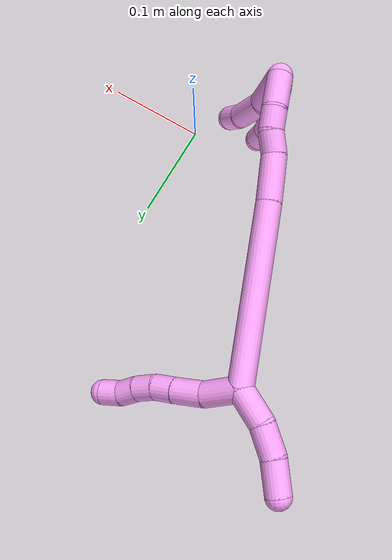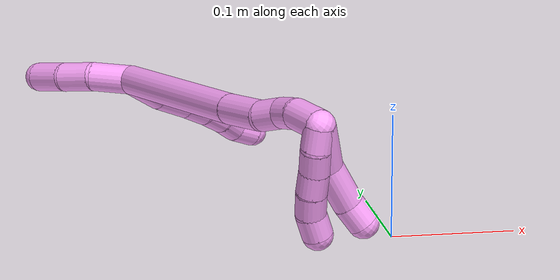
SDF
<sdf version="1.7">
 <world name="default">
  <model name="4">
   <static>0</static>
   <link name="4">
    <collision name="collision-cylinder-e_1_2_8">
     <pose>0.001529 0.003154 -0.018545 -2.97313 0.081107 -0.895965</pose>
     <geometry><cylinder><radius>0.0125</radius><length>0.037747</length></cylinder></geometry>
     <surface>
      <friction><ode><mu>1.16</mu><mu2>1.16</mu2><slip1>0</slip1><slip2>0</slip2></ode></friction>
      <contact><ode><kp>1e+06</kp><kd>1</kd><max_vel>0</max_vel><min_depth>0.001</min_depth></ode></contact>
     </surface>
    </collision>
    <visual name="visual-cylinder-e_1_2_8">
     <pose>0.001529 0.003154 -0.018545 -2.97313 0.081107 -0.895965</pose>
     <geometry><cylinder><radius>0.0125</radius><length>0.037747</length></cylinder></geometry>
     <material><ambient>1 0.65098 0.996078 1</ambient></material>
    </visual>
    <collision name="collision-cylinder-e_2_8_9">
     <pose>0.007211 0.005905 -0.051641 3.11387 0.27789 2.94399</pose>
     <geometry><cylinder><radius>0.0125</radius><length>0.030274</length></cylinder></geometry>
     <surface>
      <friction><ode><mu>1.16</mu><mu2>1.16</mu2><slip1>0</slip1><slip2>0</slip2></ode></friction>
      <contact><ode><kp>1e+06</kp><kd>1</kd><max_vel>0</max_vel><min_depth>0.001</min_depth></ode></contact>
     </surface>
    </collision>
    <visual name="visual-cylinder-e_2_8_9">
     <pose>0.007211 0.005905 -0.051641 3.11387 0.27789 2.94399</pose>
     <geometry><cylinder><radius>0.0125</radius><length>0.030274</length></cylinder></geometry>
     <material><ambient>1 0.65098 0.996078 1</ambient></material>
    </visual>
    <collision name="collision-cylinder-e_3_9_10">
     <pose>0.0138 0.004742 -0.076232 3.0661 0.23745 2.52839</pose>
     <geometry><cylinder><radius>0.0125</radius><length>0.02072</length></cylinder></geometry>
     <surface>
      <friction><ode><mu>1.16</mu><mu2>1.16</mu2><slip1>0</slip1><slip2>0</slip2></ode></friction>
      <contact><ode><kp>1e+06</kp><kd>1</kd><max_vel>0</max_vel><min_depth>0.001</min_depth></ode></contact>
     </surface>
    </collision>
    <visual name="visual-cylinder-e_3_9_10">
     <pose>0.0138 0.004742 -0.076232 3.0661 0.23745 2.52839</pose>
     <geometry><cylinder><radius>0.0125</radius><length>0.02072</length></cylinder></geometry>
     <material><ambient>1 0.65098 0.996078 1</ambient></material>
    </visual>
    <collision name="collision-cylinder-e_4_10_11">
     <pose>0.017554 0.005237 -0.096451 -3.01899 0.127755 -1.61209</pose>
     <geometry><cylinder><radius>0.0125</radius><length>0.02068</length></cylinder></geometry>
     <surface>
      <friction><ode><mu>1.16</mu><mu2>1.16</mu2><slip1>0</slip1><slip2>0</slip2></ode></friction>
      <contact><ode><kp>1e+06</kp><kd>1</kd><max_vel>0</max_vel><min_depth>0.001</min_depth></ode></contact>
     </surface>
    </collision>
    <visual name="visual-cylinder-e_4_10_11">
     <pose>0.017554 0.005237 -0.096451 -3.01899 0.127755 -1.61209</pose>
     <geometry><cylinder><radius>0.0125</radius><length>0.02068</length></cylinder></geometry>
     <material><ambient>1 0.65098 0.996078 1</ambient></material>
    </visual>
    <collision name="collision-cylinder-e_5_11_12">
     <pose>0.019174 0.009016 -0.116427 -2.88936 0.029851 -0.234377</pose>
     <geometry><cylinder><radius>0.0125</radius><length>0.020243</length></cylinder></geometry>
     <surface>
      <friction><ode><mu>1.16</mu><mu2>1.16</mu2><slip1>0</slip1><slip2>0</slip2></ode></friction>
      <contact><ode><kp>1e+06</kp><kd>1</kd><max_vel>0</max_vel><min_depth>0.001</min_depth></ode></contact>
     </surface>
    </collision>
    <visual name="visual-cylinder-e_5_11_12">
     <pose>0.019174 0.009016 -0.116427 -2.88936 0.029851 -0.234377</pose>
     <geometry><cylinder><radius>0.0125</radius><length>0.020243</length></cylinder></geometry>
     <material><ambient>1 0.65098 0.996078 1</ambient></material>
    </visual>
    <collision name="collision-cylinder-e_6_12_6">
     <pose>0.022482 0.012063 -0.135923 -3.08777 0.300123 -2.78922</pose>
     <geometry><cylinder><radius>0.0125</radius><length>0.020336</length></cylinder></geometry>
     <surface>
      <friction><ode><mu>1.16</mu><mu2>1.16</mu2><slip1>0</slip1><slip2>0</slip2></ode></friction>
      <contact><ode><kp>1e+06</kp><kd>1</kd><max_vel>0</max_vel><min_depth>0.001</min_depth></ode></contact>
     </surface>
    </collision>
    <visual name="visual-cylinder-e_6_12_6">
     <pose>0.022482 0.012063 -0.135923 -3.08777 0.300123 -2.78922</pose>
     <geometry><cylinder><radius>0.0125</radius><length>0.020336</length></cylinder></geometry>
     <material><ambient>1 0.65098 0.996078 1</ambient></material>
    </visual>
    <collision name="collision-cylinder-e_1_2_13">
     <pose>-0.008929 0.012739 0.008385 -0.988666 -0.529662 0.290281</pose>
     <geometry><cylinder><radius>0.0125</radius><length>0.035344</length></cylinder></geometry>
     <surface>
      <friction><ode><mu>1.16</mu><mu2>1.16</mu2><slip1>0</slip1><slip2>0</slip2></ode></friction>
      <contact><ode><kp>1e+06</kp><kd>1</kd><max_vel>0</max_vel><min_depth>0.001</min_depth></ode></contact>
     </surface>
    </collision>
    <visual name="visual-cylinder-e_1_2_13">
     <pose>-0.008929 0.012739 0.008385 -0.988666 -0.529662 0.290281</pose>
     <geometry><cylinder><radius>0.0125</radius><length>0.035344</length></cylinder></geometry>
     <material><ambient>1 0.65098 0.996078 1</ambient></material>
    </visual>
    <collision name="collision-cylinder-e_2_13_14">
     <pose>-0.025944 0.038315 0.020263 -1.30509 -0.546167 0.421727</pose>
     <geometry><cylinder><radius>0.0125</radius><length>0.031138</length></cylinder></geometry>
     <surface>
      <friction><ode><mu>1.16</mu><mu2>1.16</mu2><slip1>0</slip1><slip2>0</slip2></ode></friction>
      <contact><ode><kp>1e+06</kp><kd>1</kd><max_vel>0</max_vel><min_depth>0.001</min_depth></ode></contact>
     </surface>
    </collision>
    <visual name="visual-cylinder-e_2_13_14">
     <pose>-0.025944 0.038315 0.020263 -1.30509 -0.546167 0.421727</pose>
     <geometry><cylinder><radius>0.0125</radius><length>0.031138</length></cylinder></geometry>
     <material><ambient>1 0.65098 0.996078 1</ambient></material>
    </visual>
    <collision name="collision-cylinder-e_3_14_5">
     <pose>-0.041163 0.066279 0.024836 -1.4996 -0.439561 0.410198</pose>
     <geometry><cylinder><radius>0.0125</radius><length>0.033517</length></cylinder></geometry>
     <surface>
      <friction><ode><mu>1.16</mu><mu2>1.16</mu2><slip1>0</slip1><slip2>0</slip2></ode></friction>
      <contact><ode><kp>1e+06</kp><kd>1</kd><max_vel>0</max_vel><min_depth>0.001</min_depth></ode></contact>
     </surface>
    </collision>
    <visual name="visual-cylinder-e_3_14_5">
     <pose>-0.041163 0.066279 0.024836 -1.4996 -0.439561 0.410198</pose>
     <geometry><cylinder><radius>0.0125</radius><length>0.033517</length></cylinder></geometry>
     <material><ambient>1 0.65098 0.996078 1</ambient></material>
    </visual>
    <collision name="collision-cylinder-e_1_2_15">
     <pose>0.016958 -0.084673 0.009083 1.46394 0.196565 0.176717</pose>
     <geometry><cylinder><radius>0.0125</radius><length>0.173662</length></cylinder></geometry>
     <surface>
      <friction><ode><mu>1.16</mu><mu2>1.16</mu2><slip1>0</slip1><slip2>0</slip2></ode></friction>
      <contact><ode><kp>1e+06</kp><kd>1</kd><max_vel>0</max_vel><min_depth>0.001</min_depth></ode></contact>
     </surface>
    </collision>
    <visual name="visual-cylinder-e_1_2_15">
     <pose>0.016958 -0.084673 0.009083 1.46394 0.196565 0.176717</pose>
     <geometry><cylinder><radius>0.0125</radius><length>0.173662</length></cylinder></geometry>
     <material><ambient>1 0.65098 0.996078 1</ambient></material>
    </visual>
    <collision name="collision-cylinder-e_2_15_16">
     <pose>0.03954 -0.192037 0.020228 1.48016 0.241976 0.221159</pose>
     <geometry><cylinder><radius>0.0125</radius><length>0.046937</length></cylinder></geometry>
     <surface>
      <friction><ode><mu>1.16</mu><mu2>1.16</mu2><slip1>0</slip1><slip2>0</slip2></ode></friction>
      <contact><ode><kp>1e+06</kp><kd>1</kd><max_vel>0</max_vel><min_depth>0.001</min_depth></ode></contact>
     </surface>
    </collision>
    <visual name="visual-cylinder-e_2_15_16">
     <pose>0.03954 -0.192037 0.020228 1.48016 0.241976 0.221159</pose>
     <geometry><cylinder><radius>0.0125</radius><length>0.046937</length></cylinder></geometry>
     <material><ambient>1 0.65098 0.996078 1</ambient></material>
    </visual>
    <collision name="collision-cylinder-e_3_16_17">
     <pose>0.05102 -0.224472 0.022287 1.57113 0.541238 0.541411</pose>
     <geometry><cylinder><radius>0.0125</radius><length>0.022737</length></cylinder></geometry>
     <surface>
      <friction><ode><mu>1.16</mu><mu2>1.16</mu2><slip1>0</slip1><slip2>0</slip2></ode></friction>
      <contact><ode><kp>1e+06</kp><kd>1</kd><max_vel>0</max_vel><min_depth>0.001</min_depth></ode></contact>
     </surface>
    </collision>
    <visual name="visual-cylinder-e_3_16_17">
     <pose>0.05102 -0.224472 0.022287 1.57113 0.541238 0.541411</pose>
     <geometry><cylinder><radius>0.0125</radius><length>0.022737</length></cylinder></geometry>
     <material><ambient>1 0.65098 0.996078 1</ambient></material>
    </visual>
    <collision name="collision-cylinder-e_4_17_18">
     <pose>0.059921 -0.244448 0.024211 1.38466 0.284395 0.236335</pose>
     <geometry><cylinder><radius>0.0125</radius><length>0.021696</length></cylinder></geometry>
     <surface>
      <friction><ode><mu>1.16</mu><mu2>1.16</mu2><slip1>0</slip1><slip2>0</slip2></ode></friction>
      <contact><ode><kp>1e+06</kp><kd>1</kd><max_vel>0</max_vel><min_depth>0.001</min_depth></ode></contact>
     </surface>
    </collision>
    <visual name="visual-cylinder-e_4_17_18">
     <pose>0.059921 -0.244448 0.024211 1.38466 0.284395 0.236335</pose>
     <geometry><cylinder><radius>0.0125</radius><length>0.021696</length></cylinder></geometry>
     <material><ambient>1 0.65098 0.996078 1</ambient></material>
    </visual>
    <collision name="collision-cylinder-e_5_18_1">
     <pose>0.064755 -0.272051 0.027015 1.5203 0.102577 0.097532</pose>
     <geometry><cylinder><radius>0.0125</radius><length>0.034968</length></cylinder></geometry>
     <surface>
      <friction><ode><mu>1.16</mu><mu2>1.16</mu2><slip1>0</slip1><slip2>0</slip2></ode></friction>
      <contact><ode><kp>1e+06</kp><kd>1</kd><max_vel>0</max_vel><min_depth>0.001</min_depth></ode></contact>
     </surface>
    </collision>
    <visual name="visual-cylinder-e_5_18_1">
     <pose>0.064755 -0.272051 0.027015 1.5203 0.102577 0.097532</pose>
     <geometry><cylinder><radius>0.0125</radius><length>0.034968</length></cylinder></geometry>
     <material><ambient>1 0.65098 0.996078 1</ambient></material>
    </visual>
    <collision name="collision-cylinder-e_1_1_19">
     <pose>0.058376 -0.289122 0.022135 -3.08978 -0.956184 3.04167</pose>
     <geometry><cylinder><radius>0.0125</radius><length>0.02</length></cylinder></geometry>
     <surface>
      <friction><ode><mu>1.16</mu><mu2>1.16</mu2><slip1>0</slip1><slip2>0</slip2></ode></friction>
      <contact><ode><kp>1e+06</kp><kd>1</kd><max_vel>0</max_vel><min_depth>0.001</min_depth></ode></contact>
     </surface>
    </collision>
    <visual name="visual-cylinder-e_1_1_19">
     <pose>0.058376 -0.289122 0.022135 -3.08978 -0.956184 3.04167</pose>
     <geometry><cylinder><radius>0.0125</radius><length>0.02</length></cylinder></geometry>
     <material><ambient>1 0.65098 0.996078 1</ambient></material>
    </visual>
    <collision name="collision-cylinder-e_2_19_20">
     <pose>0.043283 -0.28714 0.009359 -2.90619 -0.764644 2.56958</pose>
     <geometry><cylinder><radius>0.0125</radius><length>0.02</length></cylinder></geometry>
     <surface>
      <friction><ode><mu>1.16</mu><mu2>1.16</mu2><slip1>0</slip1><slip2>0</slip2></ode></friction>
      <contact><ode><kp>1e+06</kp><kd>1</kd><max_vel>0</max_vel><min_depth>0.001</min_depth></ode></contact>
     </surface>
    </collision>
    <visual name="visual-cylinder-e_2_19_20">
     <pose>0.043283 -0.28714 0.009359 -2.90619 -0.764644 2.56958</pose>
     <geometry><cylinder><radius>0.0125</radius><length>0.02</length></cylinder></geometry>
     <material><ambient>1 0.65098 0.996078 1</ambient></material>
    </visual>
    <collision name="collision-cylinder-e_3_20_21">
     <pose>0.028773 -0.283925 -0.00399 -2.9041 -0.86129 2.63341</pose>
     <geometry><cylinder><radius>0.0125</radius><length>0.02</length></cylinder></geometry>
     <surface>
      <friction><ode><mu>1.16</mu><mu2>1.16</mu2><slip1>0</slip1><slip2>0</slip2></ode></friction>
      <contact><ode><kp>1e+06</kp><kd>1</kd><max_vel>0</max_vel><min_depth>0.001</min_depth></ode></contact>
     </surface>
    </collision>
    <visual name="visual-cylinder-e_3_20_21">
     <pose>0.028773 -0.283925 -0.00399 -2.9041 -0.86129 2.63341</pose>
     <geometry><cylinder><radius>0.0125</radius><length>0.02</length></cylinder></geometry>
     <material><ambient>1 0.65098 0.996078 1</ambient></material>
    </visual>
    <collision name="collision-cylinder-e_4_21_22">
     <pose>0.014419 -0.280773 -0.017504 -2.91993 -0.743306 2.58534</pose>
     <geometry><cylinder><radius>0.0125</radius><length>0.02</length></cylinder></geometry>
     <surface>
      <friction><ode><mu>1.16</mu><mu2>1.16</mu2><slip1>0</slip1><slip2>0</slip2></ode></friction>
      <contact><ode><kp>1e+06</kp><kd>1</kd><max_vel>0</max_vel><min_depth>0.001</min_depth></ode></contact>
     </surface>
    </collision>
    <visual name="visual-cylinder-e_4_21_22">
     <pose>0.014419 -0.280773 -0.017504 -2.91993 -0.743306 2.58534</pose>
     <geometry><cylinder><radius>0.0125</radius><length>0.02</length></cylinder></geometry>
     <material><ambient>1 0.65098 0.996078 1</ambient></material>
    </visual>
    <collision name="collision-cylinder-e_5_22_4">
     <pose>0.002656 -0.279622 -0.033337 3.08757 -0.523099 -2.9404</pose>
     <geometry><cylinder><radius>0.0125</radius><length>0.02</length></cylinder></geometry>
     <surface>
      <friction><ode><mu>1.16</mu><mu2>1.16</mu2><slip1>0</slip1><slip2>0</slip2></ode></friction>
      <contact><ode><kp>1e+06</kp><kd>1</kd><max_vel>0</max_vel><min_depth>0.001</min_depth></ode></contact>
     </surface>
    </collision>
    <visual name="visual-cylinder-e_5_22_4">
     <pose>0.002656 -0.279622 -0.033337 3.08757 -0.523099 -2.9404</pose>
     <geometry><cylinder><radius>0.0125</radius><length>0.02</length></cylinder></geometry>
     <material><ambient>1 0.65098 0.996078 1</ambient></material>
    </visual>
    <collision name="collision-cylinder-e_1_1_23">
     <pose>0.055715 -0.286289 0.010839 -2.95997 -0.558325 2.5264</pose>
     <geometry><cylinder><radius>0.0125</radius><length>0.040888</length></cylinder></geometry>
     <surface>
      <friction><ode><mu>1.16</mu><mu2>1.16</mu2><slip1>0</slip1><slip2>0</slip2></ode></friction>
      <contact><ode><kp>1e+06</kp><kd>1</kd><max_vel>0</max_vel><min_depth>0.001</min_depth></ode></contact>
     </surface>
    </collision>
    <visual name="visual-cylinder-e_1_1_23">
     <pose>0.055715 -0.286289 0.010839 -2.95997 -0.558325 2.5264</pose>
     <geometry><cylinder><radius>0.0125</radius><length>0.040888</length></cylinder></geometry>
     <material><ambient>1 0.65098 0.996078 1</ambient></material>
    </visual>
    <collision name="collision-cylinder-e_2_23_24">
     <pose>0.038257 -0.284805 -0.024155 3.04998 -0.352515 -2.63782</pose>
     <geometry><cylinder><radius>0.0125</radius><length>0.03839</length></cylinder></geometry>
     <surface>
      <friction><ode><mu>1.16</mu><mu2>1.16</mu2><slip1>0</slip1><slip2>0</slip2></ode></friction>
      <contact><ode><kp>1e+06</kp><kd>1</kd><max_vel>0</max_vel><min_depth>0.001</min_depth></ode></contact>
     </surface>
    </collision>
    <visual name="visual-cylinder-e_2_23_24">
     <pose>0.038257 -0.284805 -0.024155 3.04998 -0.352515 -2.63782</pose>
     <geometry><cylinder><radius>0.0125</radius><length>0.03839</length></cylinder></geometry>
     <material><ambient>1 0.65098 0.996078 1</ambient></material>
    </visual>
    <collision name="collision-cylinder-e_3_24_3">
     <pose>0.029031 -0.289719 -0.051577 2.80987 -0.253558 -1.30154</pose>
     <geometry><cylinder><radius>0.0125</radius><length>0.020721</length></cylinder></geometry>
     <surface>
      <friction><ode><mu>1.16</mu><mu2>1.16</mu2><slip1>0</slip1><slip2>0</slip2></ode></friction>
      <contact><ode><kp>1e+06</kp><kd>1</kd><max_vel>0</max_vel><min_depth>0.001</min_depth></ode></contact>
     </surface>
    </collision>
    <visual name="visual-cylinder-e_3_24_3">
     <pose>0.029031 -0.289719 -0.051577 2.80987 -0.253558 -1.30154</pose>
     <geometry><cylinder><radius>0.0125</radius><length>0.020721</length></cylinder></geometry>
     <material><ambient>1 0.65098 0.996078 1</ambient></material>
    </visual>
    <collision name="collision-sphere-3">
     <pose>0.026432 -0.292985 -0.061059 0 -0 0</pose>
     <geometry><sphere><radius>0.0125</radius></sphere></geometry>
     <surface>
      <friction><ode><mu>1.16</mu><mu2>1.16</mu2><slip1>0</slip1><slip2>0</slip2></ode></friction>
      <contact><ode><kp>1e+06</kp><kd>1</kd><max_vel>0</max_vel><min_depth>0.001</min_depth></ode></contact>
     </surface>
    </collision>
    <visual name="visual-sphere-3">
     <pose>0.026432 -0.292985 -0.061059 0 -0 0</pose>
     <geometry><sphere><radius>0.0125</radius></sphere></geometry>
     <material><ambient>1 0.65098 0.996078 1</ambient></material>
    </visual>
    <collision name="collision-sphere-24">
     <pose>0.03163 -0.286453 -0.042094 0 -0 0</pose>
     <geometry><sphere><radius>0.0125</radius></sphere></geometry>
     <surface>
      <friction><ode><mu>1.16</mu><mu2>1.16</mu2><slip1>0</slip1><slip2>0</slip2></ode></friction>
      <contact><ode><kp>1e+06</kp><kd>1</kd><max_vel>0</max_vel><min_depth>0.001</min_depth></ode></contact>
     </surface>
    </collision>
    <visual name="visual-sphere-24">
     <pose>0.03163 -0.286453 -0.042094 0 -0 0</pose>
     <geometry><sphere><radius>0.0125</radius></sphere></geometry>
     <material><ambient>1 0.65098 0.996078 1</ambient></material>
    </visual>
    <collision name="collision-sphere-23">
     <pose>0.044884 -0.283157 -0.006215 0 -0 0</pose>
     <geometry><sphere><radius>0.0125</radius></sphere></geometry>
     <surface>
      <friction><ode><mu>1.16</mu><mu2>1.16</mu2><slip1>0</slip1><slip2>0</slip2></ode></friction>
      <contact><ode><kp>1e+06</kp><kd>1</kd><max_vel>0</max_vel><min_depth>0.001</min_depth></ode></contact>
     </surface>
    </collision>
    <visual name="visual-sphere-23">
     <pose>0.044884 -0.283157 -0.006215 0 -0 0</pose>
     <geometry><sphere><radius>0.0125</radius></sphere></geometry>
     <material><ambient>1 0.65098 0.996078 1</ambient></material>
    </visual>
    <collision name="collision-sphere-4">
     <pose>-0.00234 -0.28009 -0.041987 0 -0 0</pose>
     <geometry><sphere><radius>0.0125</radius></sphere></geometry>
     <surface>
      <friction><ode><mu>1.16</mu><mu2>1.16</mu2><slip1>0</slip1><slip2>0</slip2></ode></friction>
      <contact><ode><kp>1e+06</kp><kd>1</kd><max_vel>0</max_vel><min_depth>0.001</min_depth></ode></contact>
     </surface>
    </collision>
    <visual name="visual-sphere-4">
     <pose>-0.00234 -0.28009 -0.041987 0 -0 0</pose>
     <geometry><sphere><radius>0.0125</radius></sphere></geometry>
     <material><ambient>1 0.65098 0.996078 1</ambient></material>
    </visual>
    <collision name="collision-sphere-22">
     <pose>0.007652 -0.279155 -0.024686 0 -0 0</pose>
     <geometry><sphere><radius>0.0125</radius></sphere></geometry>
     <surface>
      <friction><ode><mu>1.16</mu><mu2>1.16</mu2><slip1>0</slip1><slip2>0</slip2></ode></friction>
      <contact><ode><kp>1e+06</kp><kd>1</kd><max_vel>0</max_vel><min_depth>0.001</min_depth></ode></contact>
     </surface>
    </collision>
    <visual name="visual-sphere-22">
     <pose>0.007652 -0.279155 -0.024686 0 -0 0</pose>
     <geometry><sphere><radius>0.0125</radius></sphere></geometry>
     <material><ambient>1 0.65098 0.996078 1</ambient></material>
    </visual>
    <collision name="collision-sphere-21">
     <pose>0.021186 -0.282392 -0.010322 0 -0 0</pose>
     <geometry><sphere><radius>0.0125</radius></sphere></geometry>
     <surface>
      <friction><ode><mu>1.16</mu><mu2>1.16</mu2><slip1>0</slip1><slip2>0</slip2></ode></friction>
      <contact><ode><kp>1e+06</kp><kd>1</kd><max_vel>0</max_vel><min_depth>0.001</min_depth></ode></contact>
     </surface>
    </collision>
    <visual name="visual-sphere-21">
     <pose>0.021186 -0.282392 -0.010322 0 -0 0</pose>
     <geometry><sphere><radius>0.0125</radius></sphere></geometry>
     <material><ambient>1 0.65098 0.996078 1</ambient></material>
    </visual>
    <collision name="collision-sphere-20">
     <pose>0.03636 -0.285457 0.002341 0 -0 0</pose>
     <geometry><sphere><radius>0.0125</radius></sphere></geometry>
     <surface>
      <friction><ode><mu>1.16</mu><mu2>1.16</mu2><slip1>0</slip1><slip2>0</slip2></ode></friction>
      <contact><ode><kp>1e+06</kp><kd>1</kd><max_vel>0</max_vel><min_depth>0.001</min_depth></ode></contact>
     </surface>
    </collision>
    <visual name="visual-sphere-20">
     <pose>0.03636 -0.285457 0.002341 0 -0 0</pose>
     <geometry><sphere><radius>0.0125</radius></sphere></geometry>
     <material><ambient>1 0.65098 0.996078 1</ambient></material>
    </visual>
    <collision name="collision-sphere-12">
     <pose>0.019476 0.011541 -0.126224 0 -0 0</pose>
     <geometry><sphere><radius>0.0125</radius></sphere></geometry>
     <surface>
      <friction><ode><mu>1.16</mu><mu2>1.16</mu2><slip1>0</slip1><slip2>0</slip2></ode></friction>
      <contact><ode><kp>1e+06</kp><kd>1</kd><max_vel>0</max_vel><min_depth>0.001</min_depth></ode></contact>
     </surface>
    </collision>
    <visual name="visual-sphere-12">
     <pose>0.019476 0.011541 -0.126224 0 -0 0</pose>
     <geometry><sphere><radius>0.0125</radius></sphere></geometry>
     <material><ambient>1 0.65098 0.996078 1</ambient></material>
    </visual>
    <collision name="collision-sphere-11">
     <pose>0.018872 0.006491 -0.10663 0 -0 0</pose>
     <geometry><sphere><radius>0.0125</radius></sphere></geometry>
     <surface>
      <friction><ode><mu>1.16</mu><mu2>1.16</mu2><slip1>0</slip1><slip2>0</slip2></ode></friction>
      <contact><ode><kp>1e+06</kp><kd>1</kd><max_vel>0</max_vel><min_depth>0.001</min_depth></ode></contact>
     </surface>
    </collision>
    <visual name="visual-sphere-11">
     <pose>0.018872 0.006491 -0.10663 0 -0 0</pose>
     <geometry><sphere><radius>0.0125</radius></sphere></geometry>
     <material><ambient>1 0.65098 0.996078 1</ambient></material>
    </visual>
    <collision name="collision-sphere-10">
     <pose>0.016237 0.003982 -0.086272 0 -0 0</pose>
     <geometry><sphere><radius>0.0125</radius></sphere></geometry>
     <surface>
      <friction><ode><mu>1.16</mu><mu2>1.16</mu2><slip1>0</slip1><slip2>0</slip2></ode></friction>
      <contact><ode><kp>1e+06</kp><kd>1</kd><max_vel>0</max_vel><min_depth>0.001</min_depth></ode></contact>
     </surface>
    </collision>
    <visual name="visual-sphere-10">
     <pose>0.016237 0.003982 -0.086272 0 -0 0</pose>
     <geometry><sphere><radius>0.0125</radius></sphere></geometry>
     <material><ambient>1 0.65098 0.996078 1</ambient></material>
    </visual>
    <collision name="collision-sphere-9">
     <pose>0.011363 0.005501 -0.066191 0 -0 0</pose>
     <geometry><sphere><radius>0.0125</radius></sphere></geometry>
     <surface>
      <friction><ode><mu>1.16</mu><mu2>1.16</mu2><slip1>0</slip1><slip2>0</slip2></ode></friction>
      <contact><ode><kp>1e+06</kp><kd>1</kd><max_vel>0</max_vel><min_depth>0.001</min_depth></ode></contact>
     </surface>
    </collision>
    <visual name="visual-sphere-9">
     <pose>0.011363 0.005501 -0.066191 0 -0 0</pose>
     <geometry><sphere><radius>0.0125</radius></sphere></geometry>
     <material><ambient>1 0.65098 0.996078 1</ambient></material>
    </visual>
    <collision name="collision-sphere-2">
     <geometry><sphere><radius>0.0125</radius></sphere></geometry>
     <surface>
      <friction><ode><mu>1.16</mu><mu2>1.16</mu2><slip1>0</slip1><slip2>0</slip2></ode></friction>
      <contact><ode><kp>1e+06</kp><kd>1</kd><max_vel>0</max_vel><min_depth>0.001</min_depth></ode></contact>
     </surface>
    </collision>
    <visual name="visual-sphere-2">
     <geometry><sphere><radius>0.0125</radius></sphere></geometry>
     <material><ambient>1 0.65098 0.996078 1</ambient></material>
    </visual>
    <collision name="collision-sphere-19">
     <pose>0.050206 -0.288823 0.016376 0 -0 0</pose>
     <geometry><sphere><radius>0.0125</radius></sphere></geometry>
     <surface>
      <friction><ode><mu>1.16</mu><mu2>1.16</mu2><slip1>0</slip1><slip2>0</slip2></ode></friction>
      <contact><ode><kp>1e+06</kp><kd>1</kd><max_vel>0</max_vel><min_depth>0.001</min_depth></ode></contact>
     </surface>
    </collision>
    <visual name="visual-sphere-19">
     <pose>0.050206 -0.288823 0.016376 0 -0 0</pose>
     <geometry><sphere><radius>0.0125</radius></sphere></geometry>
     <material><ambient>1 0.65098 0.996078 1</ambient></material>
    </visual>
    <collision name="collision-sphere-8">
     <pose>0.003058 0.006308 -0.03709 0 -0 0</pose>
     <geometry><sphere><radius>0.0125</radius></sphere></geometry>
     <surface>
      <friction><ode><mu>1.16</mu><mu2>1.16</mu2><slip1>0</slip1><slip2>0</slip2></ode></friction>
      <contact><ode><kp>1e+06</kp><kd>1</kd><max_vel>0</max_vel><min_depth>0.001</min_depth></ode></contact>
     </surface>
    </collision>
    <visual name="visual-sphere-8">
     <pose>0.003058 0.006308 -0.03709 0 -0 0</pose>
     <geometry><sphere><radius>0.0125</radius></sphere></geometry>
     <material><ambient>1 0.65098 0.996078 1</ambient></material>
    </visual>
    <collision name="collision-sphere-6">
     <pose>0.025488 0.012586 -0.145623 0 -0 0</pose>
     <geometry><sphere><radius>0.0125</radius></sphere></geometry>
     <surface>
      <friction><ode><mu>1.16</mu><mu2>1.16</mu2><slip1>0</slip1><slip2>0</slip2></ode></friction>
      <contact><ode><kp>1e+06</kp><kd>1</kd><max_vel>0</max_vel><min_depth>0.001</min_depth></ode></contact>
     </surface>
    </collision>
    <visual name="visual-sphere-6">
     <pose>0.025488 0.012586 -0.145623 0 -0 0</pose>
     <geometry><sphere><radius>0.0125</radius></sphere></geometry>
     <material><ambient>1 0.65098 0.996078 1</ambient></material>
    </visual>
    <collision name="collision-sphere-13">
     <pose>-0.017857 0.025477 0.01677 0 -0 0</pose>
     <geometry><sphere><radius>0.0125</radius></sphere></geometry>
     <surface>
      <friction><ode><mu>1.16</mu><mu2>1.16</mu2><slip1>0</slip1><slip2>0</slip2></ode></friction>
      <contact><ode><kp>1e+06</kp><kd>1</kd><max_vel>0</max_vel><min_depth>0.001</min_depth></ode></contact>
     </surface>
    </collision>
    <visual name="visual-sphere-13">
     <pose>-0.017857 0.025477 0.01677 0 -0 0</pose>
     <geometry><sphere><radius>0.0125</radius></sphere></geometry>
     <material><ambient>1 0.65098 0.996078 1</ambient></material>
    </visual>
    <collision name="collision-sphere-14">
     <pose>-0.034031 0.051152 0.023757 0 -0 0</pose>
     <geometry><sphere><radius>0.0125</radius></sphere></geometry>
     <surface>
      <friction><ode><mu>1.16</mu><mu2>1.16</mu2><slip1>0</slip1><slip2>0</slip2></ode></friction>
      <contact><ode><kp>1e+06</kp><kd>1</kd><max_vel>0</max_vel><min_depth>0.001</min_depth></ode></contact>
     </surface>
    </collision>
    <visual name="visual-sphere-14">
     <pose>-0.034031 0.051152 0.023757 0 -0 0</pose>
     <geometry><sphere><radius>0.0125</radius></sphere></geometry>
     <material><ambient>1 0.65098 0.996078 1</ambient></material>
    </visual>
    <collision name="collision-sphere-5">
     <pose>-0.048294 0.081407 0.025915 0 -0 0</pose>
     <geometry><sphere><radius>0.0125</radius></sphere></geometry>
     <surface>
      <friction><ode><mu>1.16</mu><mu2>1.16</mu2><slip1>0</slip1><slip2>0</slip2></ode></friction>
      <contact><ode><kp>1e+06</kp><kd>1</kd><max_vel>0</max_vel><min_depth>0.001</min_depth></ode></contact>
     </surface>
    </collision>
    <visual name="visual-sphere-5">
     <pose>-0.048294 0.081407 0.025915 0 -0 0</pose>
     <geometry><sphere><radius>0.0125</radius></sphere></geometry>
     <material><ambient>1 0.65098 0.996078 1</ambient></material>
    </visual>
    <collision name="collision-sphere-15">
     <pose>0.033916 -0.169346 0.018166 0 -0 0</pose>
     <geometry><sphere><radius>0.0125</radius></sphere></geometry>
     <surface>
      <friction><ode><mu>1.16</mu><mu2>1.16</mu2><slip1>0</slip1><slip2>0</slip2></ode></friction>
      <contact><ode><kp>1e+06</kp><kd>1</kd><max_vel>0</max_vel><min_depth>0.001</min_depth></ode></contact>
     </surface>
    </collision>
    <visual name="visual-sphere-15">
     <pose>0.033916 -0.169346 0.018166 0 -0 0</pose>
     <geometry><sphere><radius>0.0125</radius></sphere></geometry>
     <material><ambient>1 0.65098 0.996078 1</ambient></material>
    </visual>
    <collision name="collision-sphere-16">
     <pose>0.045164 -0.214729 0.02229 0 -0 0</pose>
     <geometry><sphere><radius>0.0125</radius></sphere></geometry>
     <surface>
      <friction><ode><mu>1.16</mu><mu2>1.16</mu2><slip1>0</slip1><slip2>0</slip2></ode></friction>
      <contact><ode><kp>1e+06</kp><kd>1</kd><max_vel>0</max_vel><min_depth>0.001</min_depth></ode></contact>
     </surface>
    </collision>
    <visual name="visual-sphere-16">
     <pose>0.045164 -0.214729 0.02229 0 -0 0</pose>
     <geometry><sphere><radius>0.0125</radius></sphere></geometry>
     <material><ambient>1 0.65098 0.996078 1</ambient></material>
    </visual>
    <collision name="collision-sphere-17">
     <pose>0.056877 -0.234216 0.022284 0 -0 0</pose>
     <geometry><sphere><radius>0.0125</radius></sphere></geometry>
     <surface>
      <friction><ode><mu>1.16</mu><mu2>1.16</mu2><slip1>0</slip1><slip2>0</slip2></ode></friction>
      <contact><ode><kp>1e+06</kp><kd>1</kd><max_vel>0</max_vel><min_depth>0.001</min_depth></ode></contact>
     </surface>
    </collision>
    <visual name="visual-sphere-17">
     <pose>0.056877 -0.234216 0.022284 0 -0 0</pose>
     <geometry><sphere><radius>0.0125</radius></sphere></geometry>
     <material><ambient>1 0.65098 0.996078 1</ambient></material>
    </visual>
    <collision name="collision-sphere-18">
     <pose>0.062965 -0.254681 0.026138 0 -0 0</pose>
     <geometry><sphere><radius>0.0125</radius></sphere></geometry>
     <surface>
      <friction><ode><mu>1.16</mu><mu2>1.16</mu2><slip1>0</slip1><slip2>0</slip2></ode></friction>
      <contact><ode><kp>1e+06</kp><kd>1</kd><max_vel>0</max_vel><min_depth>0.001</min_depth></ode></contact>
     </surface>
    </collision>
    <visual name="visual-sphere-18">
     <pose>0.062965 -0.254681 0.026138 0 -0 0</pose>
     <geometry><sphere><radius>0.0125</radius></sphere></geometry>
     <material><ambient>1 0.65098 0.996078 1</ambient></material>
    </visual>
    <collision name="collision-sphere-1">
     <pose>0.066546 -0.289421 0.027893 0 -0 0</pose>
     <geometry><sphere><radius>0.0125</radius></sphere></geometry>
     <surface>
      <friction><ode><mu>1.16</mu><mu2>1.16</mu2><slip1>0</slip1><slip2>0</slip2></ode></friction>
      <contact><ode><kp>1e+06</kp><kd>1</kd><max_vel>0</max_vel><min_depth>0.001</min_depth></ode></contact>
     </surface>
    </collision>
    <visual name="visual-sphere-1">
     <pose>0.066546 -0.289421 0.027893 0 -0 0</pose>
     <geometry><sphere><radius>0.0125</radius></sphere></geometry>
     <material><ambient>1 0.65098 0.996078 1</ambient></material>
    </visual>
    <inertial>
     <pose>0.021455 -0.127862 -0.008953 0 -0 0</pose>
     <mass>0.75</mass>
     <inertia>
      <ixx>0.000516</ixx>
      <ixy>0</ixy>
      <ixz>0</ixz>
      <iyy>0.000155</iyy>
      <iyz>0</iyz>
      <izz>0.000342</izz>
     </inertia>
    </inertial>
   </link>
   <pose>-0.181684 0.224864 0.080842 0.230898 -0.884642 0.148577</pose>
  </model>
 </world>
</sdf>
